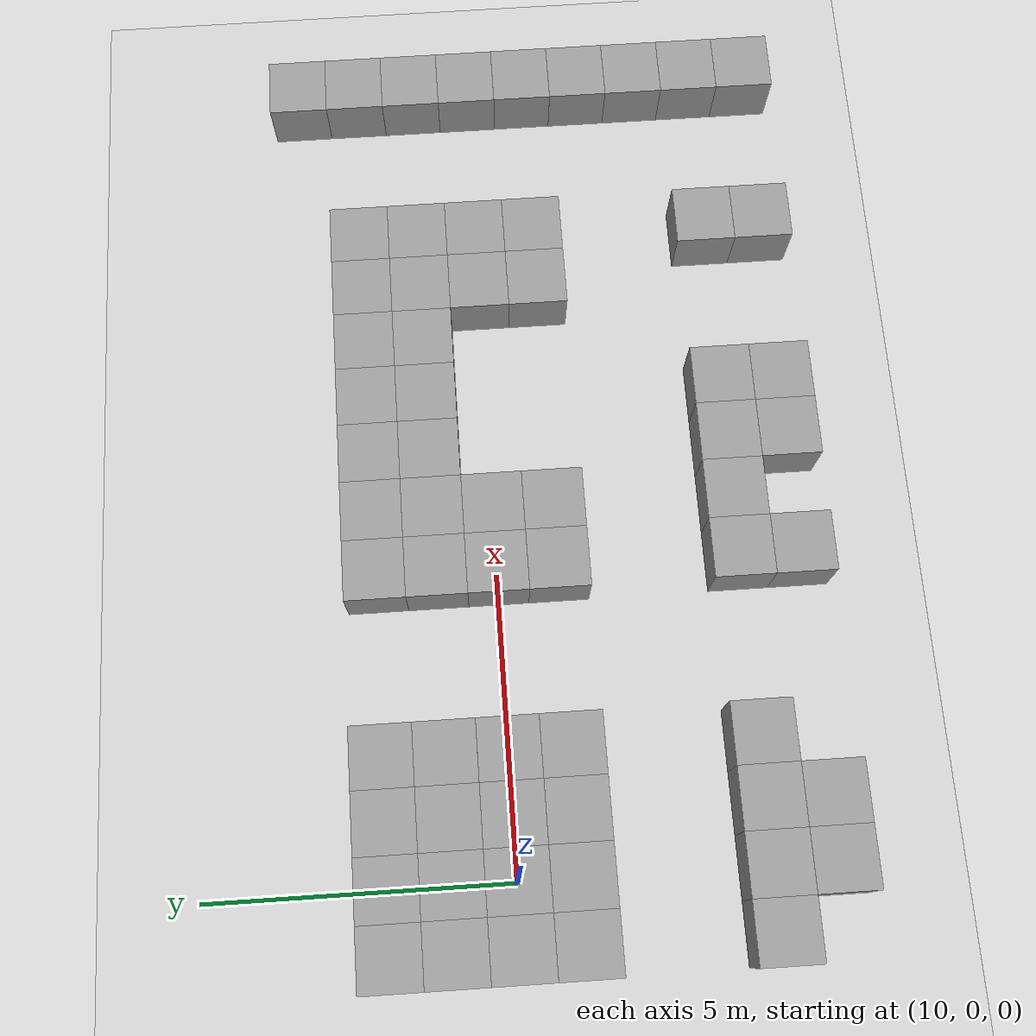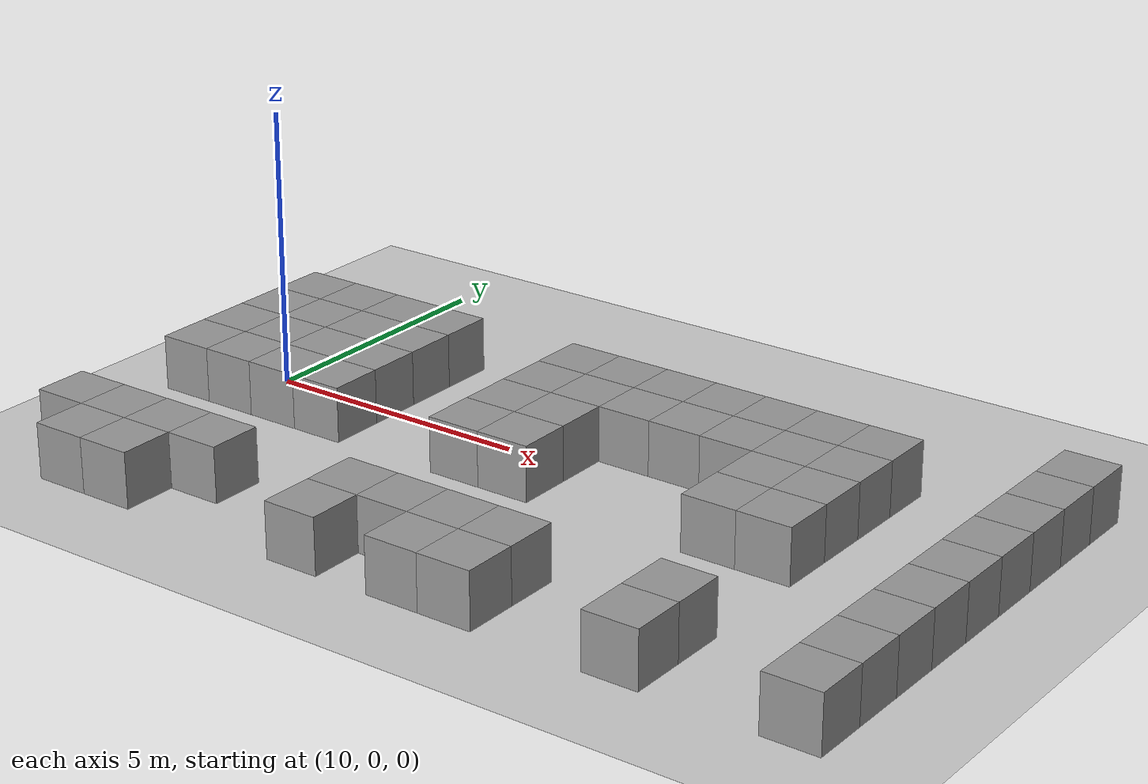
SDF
<sdf version="1.4">
 <world name="default">
  <model name="ground_plane">
   <static>true</static>
   <link name="link">
    <collision name="collision">
     <geometry><plane><normal>0 0 1</normal><size>100 100</size></plane></geometry>
     <surface><friction><ode><mu>100</mu><mu2>50</mu2></ode></friction></surface>
    </collision>
    <visual name="visual">
     <cast_shadows>0</cast_shadows>
     <geometry><plane><normal>0 0 1</normal><size>100 100</size></plane></geometry>
     <material>
      <script><uri>file://media/materials/scripts/gazebo.material</uri><name>Gazebo/Grey</name></script>
     </material>
    </visual>
    <velocity_decay><linear>0</linear><angular>0</angular></velocity_decay>
   </link>
  </model>
  <model name="unit_box_182">
   <pose>24.0018 -0.999661 0.5 0 -0 7.7e-05</pose>
   <static>true</static>
   <link name="link">
    <inertial>
     <mass>1</mass>
     <inertia><ixx>1</ixx><ixy>0</ixy><ixz>0</ixz><iyy>1</iyy><iyz>0</iyz><izz>1</izz></inertia>
    </inertial>
    <collision name="collision"><geometry><box><size>1 1 1</size></box></geometry></collision>
    <visual name="visual">
     <geometry><box><size>1 1 1</size></box></geometry>
     <material>
      <script><uri>file://media/materials/scripts/gazebo.material</uri><name>Gazebo/Grey</name></script>
     </material>
    </visual>
    <velocity_decay><linear>0</linear><angular>0</angular></velocity_decay>
   </link>
   <static>true</static>
  </model>
  <model name="unit_box_196">
   <pose>24 3.00041 0.5 0 -0 5.5e-05</pose>
   <static>true</static>
   <link name="link">
    <inertial>
     <mass>1</mass>
     <inertia><ixx>1</ixx><ixy>0</ixy><ixz>0</ixz><iyy>1</iyy><iyz>0</iyz><izz>1</izz></inertia>
    </inertial>
    <collision name="collision"><geometry><box><size>1 1 1</size></box></geometry></collision>
    <visual name="visual">
     <geometry><box><size>1 1 1</size></box></geometry>
     <material>
      <script><uri>file://media/materials/scripts/gazebo.material</uri><name>Gazebo/Grey</name></script>
     </material>
    </visual>
    <velocity_decay><linear>0</linear><angular>0</angular></velocity_decay>
   </link>
   <static>true</static>
  </model>
  <model name="unit_box_197">
   <pose>23.9999 2.00038 0.5 0 -0 6.3e-05</pose>
   <static>true</static>
   <link name="link">
    <inertial>
     <mass>1</mass>
     <inertia><ixx>1</ixx><ixy>0</ixy><ixz>0</ixz><iyy>1</iyy><iyz>0</iyz><izz>1</izz></inertia>
    </inertial>
    <collision name="collision"><geometry><box><size>1 1 1</size></box></geometry></collision>
    <visual name="visual">
     <geometry><box><size>1 1 1</size></box></geometry>
     <material>
      <script><uri>file://media/materials/scripts/gazebo.material</uri><name>Gazebo/Grey</name></script>
     </material>
    </visual>
    <velocity_decay><linear>0</linear><angular>0</angular></velocity_decay>
   </link>
   <static>true</static>
  </model>
  <model name="unit_box_198">
   <pose>23.9999 1.00035 0.5 0 -0 7.1e-05</pose>
   <static>true</static>
   <link name="link">
    <inertial>
     <mass>1</mass>
     <inertia><ixx>1</ixx><ixy>0</ixy><ixz>0</ixz><iyy>1</iyy><iyz>0</iyz><izz>1</izz></inertia>
    </inertial>
    <collision name="collision"><geometry><box><size>1 1 1</size></box></geometry></collision>
    <visual name="visual">
     <geometry><box><size>1 1 1</size></box></geometry>
     <material>
      <script><uri>file://media/materials/scripts/gazebo.material</uri><name>Gazebo/Grey</name></script>
     </material>
    </visual>
    <velocity_decay><linear>0</linear><angular>0</angular></velocity_decay>
   </link>
   <static>true</static>
  </model>
  <model name="unit_box_199">
   <pose>23.9997 0.000344 0.5 0 -0 7.4e-05</pose>
   <static>true</static>
   <link name="link">
    <inertial>
     <mass>1</mass>
     <inertia><ixx>1</ixx><ixy>0</ixy><ixz>0</ixz><iyy>1</iyy><iyz>0</iyz><izz>1</izz></inertia>
    </inertial>
    <collision name="collision"><geometry><box><size>1 1 1</size></box></geometry></collision>
    <visual name="visual">
     <geometry><box><size>1 1 1</size></box></geometry>
     <material>
      <script><uri>file://media/materials/scripts/gazebo.material</uri><name>Gazebo/Grey</name></script>
     </material>
    </visual>
    <velocity_decay><linear>0</linear><angular>0</angular></velocity_decay>
   </link>
   <static>true</static>
  </model>
  <model name="unit_box_204">
   <pose>24 -1.99999 0.5 0 -0 1e-06</pose>
   <static>true</static>
   <link name="link">
    <inertial>
     <mass>1</mass>
     <inertia><ixx>1</ixx><ixy>0</ixy><ixz>0</ixz><iyy>1</iyy><iyz>0</iyz><izz>1</izz></inertia>
    </inertial>
    <collision name="collision"><geometry><box><size>1 1 1</size></box></geometry></collision>
    <visual name="visual">
     <geometry><box><size>1 1 1</size></box></geometry>
     <material>
      <script><uri>file://media/materials/scripts/gazebo.material</uri><name>Gazebo/Grey</name></script>
     </material>
    </visual>
    <velocity_decay><linear>0</linear><angular>0</angular></velocity_decay>
   </link>
   <static>true</static>
  </model>
  <model name="unit_box_205">
   <pose>24 -2.99999 0.5 0 -0 1e-06</pose>
   <static>true</static>
   <link name="link">
    <inertial>
     <mass>1</mass>
     <inertia><ixx>1</ixx><ixy>0</ixy><ixz>0</ixz><iyy>1</iyy><iyz>0</iyz><izz>1</izz></inertia>
    </inertial>
    <collision name="collision"><geometry><box><size>1 1 1</size></box></geometry></collision>
    <visual name="visual">
     <geometry><box><size>1 1 1</size></box></geometry>
     <material>
      <script><uri>file://media/materials/scripts/gazebo.material</uri><name>Gazebo/Grey</name></script>
     </material>
    </visual>
    <velocity_decay><linear>0</linear><angular>0</angular></velocity_decay>
   </link>
   <static>true</static>
  </model>
  <model name="unit_box_206">
   <pose>24 -3.99999 0.5 0 0 -1e-06</pose>
   <static>true</static>
   <link name="link">
    <inertial>
     <mass>1</mass>
     <inertia><ixx>1</ixx><ixy>0</ixy><ixz>0</ixz><iyy>1</iyy><iyz>0</iyz><izz>1</izz></inertia>
    </inertial>
    <collision name="collision"><geometry><box><size>1 1 1</size></box></geometry></collision>
    <visual name="visual">
     <geometry><box><size>1 1 1</size></box></geometry>
     <material>
      <script><uri>file://media/materials/scripts/gazebo.material</uri><name>Gazebo/Grey</name></script>
     </material>
    </visual>
    <velocity_decay><linear>0</linear><angular>0</angular></velocity_decay>
   </link>
   <static>true</static>
  </model>
  <model name="unit_box_207">
   <pose>24 -4.99999 0.5 0 0 -1e-06</pose>
   <static>true</static>
   <link name="link">
    <inertial>
     <mass>1</mass>
     <inertia><ixx>1</ixx><ixy>0</ixy><ixz>0</ixz><iyy>1</iyy><iyz>0</iyz><izz>1</izz></inertia>
    </inertial>
    <collision name="collision"><geometry><box><size>1 1 1</size></box></geometry></collision>
    <visual name="visual">
     <geometry><box><size>1 1 1</size></box></geometry>
     <material>
      <script><uri>file://media/materials/scripts/gazebo.material</uri><name>Gazebo/Grey</name></script>
     </material>
    </visual>
    <velocity_decay><linear>0</linear><angular>0</angular></velocity_decay>
   </link>
   <static>true</static>
  </model>
  <model name="unit_box_167_0">
   <pose>11 -4.99999 0.5 -0 -0 -1e-06</pose>
   <link name="link">
    <inertial>
     <mass>1</mass>
     <inertia><ixx>1</ixx><ixy>0</ixy><ixz>0</ixz><iyy>1</iyy><iyz>0</iyz><izz>1</izz></inertia>
    </inertial>
    <collision name="collision"><geometry><box><size>1 1 1</size></box></geometry></collision>
    <visual name="visual">
     <geometry><box><size>1 1 1</size></box></geometry>
     <material>
      <script><uri>file://media/materials/scripts/gazebo.material</uri><name>Gazebo/Grey</name></script>
     </material>
    </visual>
    <velocity_decay><linear>0</linear><angular>0</angular></velocity_decay>
   </link>
   <static>true</static>
  </model>
  <model name="unit_box_168_0">
   <pose>10 -4.99999 0.5 0 -0 1e-06</pose>
   <link name="link">
    <inertial>
     <mass>1</mass>
     <inertia><ixx>1</ixx><ixy>0</ixy><ixz>0</ixz><iyy>1</iyy><iyz>0</iyz><izz>1</izz></inertia>
    </inertial>
    <collision name="collision"><geometry><box><size>1 1 1</size></box></geometry></collision>
    <visual name="visual">
     <geometry><box><size>1 1 1</size></box></geometry>
     <material>
      <script><uri>file://media/materials/scripts/gazebo.material</uri><name>Gazebo/Grey</name></script>
     </material>
    </visual>
    <velocity_decay><linear>0</linear><angular>0</angular></velocity_decay>
   </link>
   <static>true</static>
  </model>
  <model name="unit_box_172_0">
   <pose>9 -4 0.5 0 -0 0</pose>
   <link name="link">
    <inertial>
     <mass>1</mass>
     <inertia><ixx>1</ixx><ixy>0</ixy><ixz>0</ixz><iyy>1</iyy><iyz>0</iyz><izz>1</izz></inertia>
    </inertial>
    <collision name="collision"><geometry><box><size>1 1 1</size></box></geometry></collision>
    <visual name="visual">
     <geometry><box><size>1 1 1</size></box></geometry>
     <material>
      <script><uri>file://media/materials/scripts/gazebo.material</uri><name>Gazebo/Grey</name></script>
     </material>
    </visual>
    <velocity_decay><linear>0</linear><angular>0</angular></velocity_decay>
   </link>
   <static>true</static>
  </model>
  <model name="unit_box_173_0">
   <pose>10 -3.99999 0.5 0 -0 -1e-06</pose>
   <link name="link">
    <inertial>
     <mass>1</mass>
     <inertia><ixx>1</ixx><ixy>0</ixy><ixz>0</ixz><iyy>1</iyy><iyz>0</iyz><izz>1</izz></inertia>
    </inertial>
    <collision name="collision"><geometry><box><size>1 1 1</size></box></geometry></collision>
    <visual name="visual">
     <geometry><box><size>1 1 1</size></box></geometry>
     <material>
      <script><uri>file://media/materials/scripts/gazebo.material</uri><name>Gazebo/Grey</name></script>
     </material>
    </visual>
    <velocity_decay><linear>0</linear><angular>0</angular></velocity_decay>
   </link>
   <static>true</static>
  </model>
  <model name="unit_box_174_0">
   <pose>11 -3.99999 0.5 0 0 -1e-06</pose>
   <link name="link">
    <inertial>
     <mass>1</mass>
     <inertia><ixx>1</ixx><ixy>0</ixy><ixz>0</ixz><iyy>1</iyy><iyz>0</iyz><izz>1</izz></inertia>
    </inertial>
    <collision name="collision"><geometry><box><size>1 1 1</size></box></geometry></collision>
    <visual name="visual">
     <geometry><box><size>1 1 1</size></box></geometry>
     <material>
      <script><uri>file://media/materials/scripts/gazebo.material</uri><name>Gazebo/Grey</name></script>
     </material>
    </visual>
    <velocity_decay><linear>0</linear><angular>0</angular></velocity_decay>
   </link>
   <static>true</static>
  </model>
  <model name="unit_box_175_0">
   <pose>12 -4 0.5 0 -0 0</pose>
   <link name="link">
    <inertial>
     <mass>1</mass>
     <inertia><ixx>1</ixx><ixy>0</ixy><ixz>0</ixz><iyy>1</iyy><iyz>0</iyz><izz>1</izz></inertia>
    </inertial>
    <collision name="collision"><geometry><box><size>1 1 1</size></box></geometry></collision>
    <visual name="visual">
     <geometry><box><size>1 1 1</size></box></geometry>
     <material>
      <script><uri>file://media/materials/scripts/gazebo.material</uri><name>Gazebo/Grey</name></script>
     </material>
    </visual>
    <velocity_decay><linear>0</linear><angular>0</angular></velocity_decay>
   </link>
   <static>true</static>
  </model>
  <model name="unit_box_178_0">
   <pose>15 -3.99999 0.5 -0 -0 -5e-06</pose>
   <link name="link">
    <inertial>
     <mass>1</mass>
     <inertia><ixx>1</ixx><ixy>0</ixy><ixz>0</ixz><iyy>1</iyy><iyz>0</iyz><izz>1</izz></inertia>
    </inertial>
    <collision name="collision"><geometry><box><size>1 1 1</size></box></geometry></collision>
    <visual name="visual">
     <geometry><box><size>1 1 1</size></box></geometry>
     <material>
      <script><uri>file://media/materials/scripts/gazebo.material</uri><name>Gazebo/Grey</name></script>
     </material>
    </visual>
    <velocity_decay><linear>0</linear><angular>0</angular></velocity_decay>
   </link>
   <static>true</static>
  </model>
  <model name="unit_box_179_0">
   <pose>15 -4.99999 0.5 0 0 -5e-06</pose>
   <link name="link">
    <inertial>
     <mass>1</mass>
     <inertia><ixx>1</ixx><ixy>0</ixy><ixz>0</ixz><iyy>1</iyy><iyz>0</iyz><izz>1</izz></inertia>
    </inertial>
    <collision name="collision"><geometry><box><size>1 1 1</size></box></geometry></collision>
    <visual name="visual">
     <geometry><box><size>1 1 1</size></box></geometry>
     <material>
      <script><uri>file://media/materials/scripts/gazebo.material</uri><name>Gazebo/Grey</name></script>
     </material>
    </visual>
    <velocity_decay><linear>0</linear><angular>0</angular></velocity_decay>
   </link>
   <static>true</static>
  </model>
  <model name="unit_box_193_0">
   <pose>21 -5 0.5 0 0 -4e-06</pose>
   <link name="link">
    <inertial>
     <mass>1</mass>
     <inertia><ixx>1</ixx><ixy>0</ixy><ixz>0</ixz><iyy>1</iyy><iyz>0</iyz><izz>1</izz></inertia>
    </inertial>
    <collision name="collision"><geometry><box><size>1 1 1</size></box></geometry></collision>
    <visual name="visual">
     <geometry><box><size>1 1 1</size></box></geometry>
     <material>
      <script><uri>file://media/materials/scripts/gazebo.material</uri><name>Gazebo/Grey</name></script>
     </material>
    </visual>
    <velocity_decay><linear>0</linear><angular>0</angular></velocity_decay>
   </link>
   <static>true</static>
  </model>
  <model name="unit_box_194_0">
   <pose>21 -4 0.5 0 0 -4e-06</pose>
   <link name="link">
    <inertial>
     <mass>1</mass>
     <inertia><ixx>1</ixx><ixy>0</ixy><ixz>0</ixz><iyy>1</iyy><iyz>0</iyz><izz>1</izz></inertia>
    </inertial>
    <collision name="collision"><geometry><box><size>1 1 1</size></box></geometry></collision>
    <visual name="visual">
     <geometry><box><size>1 1 1</size></box></geometry>
     <material>
      <script><uri>file://media/materials/scripts/gazebo.material</uri><name>Gazebo/Grey</name></script>
     </material>
    </visual>
    <velocity_decay><linear>0</linear><angular>0</angular></velocity_decay>
   </link>
   <static>true</static>
  </model>
  <model name="unit_box_195_0">
   <pose>16 -3.99999 0.5 0 -0 -6e-06</pose>
   <link name="link">
    <inertial>
     <mass>1</mass>
     <inertia><ixx>1</ixx><ixy>0</ixy><ixz>0</ixz><iyy>1</iyy><iyz>0</iyz><izz>1</izz></inertia>
    </inertial>
    <collision name="collision"><geometry><box><size>1 1 1</size></box></geometry></collision>
    <visual name="visual">
     <geometry><box><size>1 1 1</size></box></geometry>
     <material>
      <script><uri>file://media/materials/scripts/gazebo.material</uri><name>Gazebo/Grey</name></script>
     </material>
    </visual>
    <velocity_decay><linear>0</linear><angular>0</angular></velocity_decay>
   </link>
   <static>true</static>
  </model>
  <model name="unit_box_197_0">
   <pose>17 -5 0.5 -0 -0 -4e-06</pose>
   <link name="link">
    <inertial>
     <mass>1</mass>
     <inertia><ixx>1</ixx><ixy>0</ixy><ixz>0</ixz><iyy>1</iyy><iyz>0</iyz><izz>1</izz></inertia>
    </inertial>
    <collision name="collision"><geometry><box><size>1 1 1</size></box></geometry></collision>
    <visual name="visual">
     <geometry><box><size>1 1 1</size></box></geometry>
     <material>
      <script><uri>file://media/materials/scripts/gazebo.material</uri><name>Gazebo/Grey</name></script>
     </material>
    </visual>
    <velocity_decay><linear>0</linear><angular>0</angular></velocity_decay>
   </link>
   <static>true</static>
  </model>
  <model name="unit_box_198_0">
   <pose>18 -5 0.5 -0 -0 -6e-06</pose>
   <link name="link">
    <inertial>
     <mass>1</mass>
     <inertia><ixx>1</ixx><ixy>0</ixy><ixz>0</ixz><iyy>1</iyy><iyz>0</iyz><izz>1</izz></inertia>
    </inertial>
    <collision name="collision"><geometry><box><size>1 1 1</size></box></geometry></collision>
    <visual name="visual">
     <geometry><box><size>1 1 1</size></box></geometry>
     <material>
      <script><uri>file://media/materials/scripts/gazebo.material</uri><name>Gazebo/Grey</name></script>
     </material>
    </visual>
    <velocity_decay><linear>0</linear><angular>0</angular></velocity_decay>
   </link>
   <static>true</static>
  </model>
  <model name="unit_box_199_0">
   <pose>17 -4 0.5 0 0 -6e-06</pose>
   <link name="link">
    <inertial>
     <mass>1</mass>
     <inertia><ixx>1</ixx><ixy>0</ixy><ixz>0</ixz><iyy>1</iyy><iyz>0</iyz><izz>1</izz></inertia>
    </inertial>
    <collision name="collision"><geometry><box><size>1 1 1</size></box></geometry></collision>
    <visual name="visual">
     <geometry><box><size>1 1 1</size></box></geometry>
     <material>
      <script><uri>file://media/materials/scripts/gazebo.material</uri><name>Gazebo/Grey</name></script>
     </material>
    </visual>
    <velocity_decay><linear>0</linear><angular>0</angular></velocity_decay>
   </link>
   <static>true</static>
  </model>
  <model name="unit_box_200_0">
   <pose>18 -4 0.5 0 0 -6e-06</pose>
   <link name="link">
    <inertial>
     <mass>1</mass>
     <inertia><ixx>1</ixx><ixy>0</ixy><ixz>0</ixz><iyy>1</iyy><iyz>0</iyz><izz>1</izz></inertia>
    </inertial>
    <collision name="collision"><geometry><box><size>1 1 1</size></box></geometry></collision>
    <visual name="visual">
     <geometry><box><size>1 1 1</size></box></geometry>
     <material>
      <script><uri>file://media/materials/scripts/gazebo.material</uri><name>Gazebo/Grey</name></script>
     </material>
    </visual>
    <velocity_decay><linear>0</linear><angular>0</angular></velocity_decay>
   </link>
   <static>true</static>
  </model>
  <model name="unit_box_241_0">
   <pose>9 2.00001 0.5 0 0 -2e-06</pose>
   <link name="link">
    <inertial>
     <mass>1</mass>
     <inertia><ixx>1</ixx><ixy>0</ixy><ixz>0</ixz><iyy>1</iyy><iyz>0</iyz><izz>1</izz></inertia>
    </inertial>
    <collision name="collision"><geometry><box><size>1 1 1</size></box></geometry></collision>
    <visual name="visual">
     <geometry><box><size>1 1 1</size></box></geometry>
     <material>
      <script><uri>file://media/materials/scripts/gazebo.material</uri><name>Gazebo/Grey</name></script>
     </material>
    </visual>
    <velocity_decay><linear>0</linear><angular>0</angular></velocity_decay>
   </link>
   <static>true</static>
  </model>
  <model name="unit_box_242">
   <pose>9 0.999997 0.5 0 0 -3e-06</pose>
   <link name="link">
    <inertial>
     <mass>1</mass>
     <inertia><ixx>1</ixx><ixy>0</ixy><ixz>0</ixz><iyy>1</iyy><iyz>0</iyz><izz>1</izz></inertia>
    </inertial>
    <collision name="collision"><geometry><box><size>1 1 1</size></box></geometry></collision>
    <visual name="visual">
     <geometry><box><size>1 1 1</size></box></geometry>
     <material>
      <script><uri>file://media/materials/scripts/gazebo.material</uri><name>Gazebo/Grey</name></script>
     </material>
    </visual>
    <velocity_decay><linear>0</linear><angular>0</angular></velocity_decay>
   </link>
   <static>true</static>
  </model>
  <model name="unit_box_243_0">
   <pose>9 -4e-06 0.5 0 -0 -2e-06</pose>
   <link name="link">
    <inertial>
     <mass>1</mass>
     <inertia><ixx>1</ixx><ixy>0</ixy><ixz>0</ixz><iyy>1</iyy><iyz>0</iyz><izz>1</izz></inertia>
    </inertial>
    <collision name="collision"><geometry><box><size>1 1 1</size></box></geometry></collision>
    <visual name="visual">
     <geometry><box><size>1 1 1</size></box></geometry>
     <material>
      <script><uri>file://media/materials/scripts/gazebo.material</uri><name>Gazebo/Grey</name></script>
     </material>
    </visual>
    <velocity_decay><linear>0</linear><angular>0</angular></velocity_decay>
   </link>
   <static>true</static>
  </model>
  <model name="unit_box_244_0">
   <pose>10 1.7e-05 0.5 0 0 -2e-06</pose>
   <link name="link">
    <inertial>
     <mass>1</mass>
     <inertia><ixx>1</ixx><ixy>0</ixy><ixz>0</ixz><iyy>1</iyy><iyz>0</iyz><izz>1</izz></inertia>
    </inertial>
    <collision name="collision"><geometry><box><size>1 1 1</size></box></geometry></collision>
    <visual name="visual">
     <geometry><box><size>1 1 1</size></box></geometry>
     <material>
      <script><uri>file://media/materials/scripts/gazebo.material</uri><name>Gazebo/Grey</name></script>
     </material>
    </visual>
    <velocity_decay><linear>0</linear><angular>0</angular></velocity_decay>
   </link>
   <static>true</static>
  </model>
  <model name="unit_box_245">
   <pose>10 1.00002 0.5 -0 -0 -2e-06</pose>
   <link name="link">
    <inertial>
     <mass>1</mass>
     <inertia><ixx>1</ixx><ixy>0</ixy><ixz>0</ixz><iyy>1</iyy><iyz>0</iyz><izz>1</izz></inertia>
    </inertial>
    <collision name="collision"><geometry><box><size>1 1 1</size></box></geometry></collision>
    <visual name="visual">
     <geometry><box><size>1 1 1</size></box></geometry>
     <material>
      <script><uri>file://media/materials/scripts/gazebo.material</uri><name>Gazebo/Grey</name></script>
     </material>
    </visual>
    <velocity_decay><linear>0</linear><angular>0</angular></velocity_decay>
   </link>
   <static>true</static>
  </model>
  <model name="unit_box_246">
   <pose>10 2.00002 0.5 0 -0 0</pose>
   <link name="link">
    <inertial>
     <mass>1</mass>
     <inertia><ixx>1</ixx><ixy>0</ixy><ixz>0</ixz><iyy>1</iyy><iyz>0</iyz><izz>1</izz></inertia>
    </inertial>
    <collision name="collision"><geometry><box><size>1 1 1</size></box></geometry></collision>
    <visual name="visual">
     <geometry><box><size>1 1 1</size></box></geometry>
     <material>
      <script><uri>file://media/materials/scripts/gazebo.material</uri><name>Gazebo/Grey</name></script>
     </material>
    </visual>
    <velocity_decay><linear>0</linear><angular>0</angular></velocity_decay>
   </link>
   <static>true</static>
  </model>
  <model name="unit_box_247">
   <pose>11 1e-06 0.5 0 0 -2e-06</pose>
   <link name="link">
    <inertial>
     <mass>1</mass>
     <inertia><ixx>1</ixx><ixy>0</ixy><ixz>0</ixz><iyy>1</iyy><iyz>0</iyz><izz>1</izz></inertia>
    </inertial>
    <collision name="collision"><geometry><box><size>1 1 1</size></box></geometry></collision>
    <visual name="visual">
     <geometry><box><size>1 1 1</size></box></geometry>
     <material>
      <script><uri>file://media/materials/scripts/gazebo.material</uri><name>Gazebo/Grey</name></script>
     </material>
    </visual>
    <velocity_decay><linear>0</linear><angular>0</angular></velocity_decay>
   </link>
   <static>true</static>
  </model>
  <model name="unit_box_250">
   <pose>9 -1.00001 0.5 0 0 -2e-06</pose>
   <link name="link">
    <inertial>
     <mass>1</mass>
     <inertia><ixx>1</ixx><ixy>0</ixy><ixz>0</ixz><iyy>1</iyy><iyz>0</iyz><izz>1</izz></inertia>
    </inertial>
    <collision name="collision"><geometry><box><size>1 1 1</size></box></geometry></collision>
    <visual name="visual">
     <geometry><box><size>1 1 1</size></box></geometry>
     <material>
      <script><uri>file://media/materials/scripts/gazebo.material</uri><name>Gazebo/Grey</name></script>
     </material>
    </visual>
    <velocity_decay><linear>0</linear><angular>0</angular></velocity_decay>
   </link>
   <static>true</static>
  </model>
  <model name="unit_box_251_0">
   <pose>10 -0.999988 0.5 0 -0 -2e-06</pose>
   <link name="link">
    <inertial>
     <mass>1</mass>
     <inertia><ixx>1</ixx><ixy>0</ixy><ixz>0</ixz><iyy>1</iyy><iyz>0</iyz><izz>1</izz></inertia>
    </inertial>
    <collision name="collision"><geometry><box><size>1 1 1</size></box></geometry></collision>
    <visual name="visual">
     <geometry><box><size>1 1 1</size></box></geometry>
     <material>
      <script><uri>file://media/materials/scripts/gazebo.material</uri><name>Gazebo/Grey</name></script>
     </material>
    </visual>
    <velocity_decay><linear>0</linear><angular>0</angular></velocity_decay>
   </link>
   <static>true</static>
  </model>
  <model name="unit_box_252_0">
   <pose>11 -1 0.5 0 0 -2e-06</pose>
   <link name="link">
    <inertial>
     <mass>1</mass>
     <inertia><ixx>1</ixx><ixy>0</ixy><ixz>0</ixz><iyy>1</iyy><iyz>0</iyz><izz>1</izz></inertia>
    </inertial>
    <collision name="collision"><geometry><box><size>1 1 1</size></box></geometry></collision>
    <visual name="visual">
     <geometry><box><size>1 1 1</size></box></geometry>
     <material>
      <script><uri>file://media/materials/scripts/gazebo.material</uri><name>Gazebo/Grey</name></script>
     </material>
    </visual>
    <velocity_decay><linear>0</linear><angular>0</angular></velocity_decay>
   </link>
   <static>true</static>
  </model>
  <model name="unit_box_253_0">
   <pose>11 1 0.5 0 0 -2e-06</pose>
   <link name="link">
    <inertial>
     <mass>1</mass>
     <inertia><ixx>1</ixx><ixy>0</ixy><ixz>0</ixz><iyy>1</iyy><iyz>0</iyz><izz>1</izz></inertia>
    </inertial>
    <collision name="collision"><geometry><box><size>1 1 1</size></box></geometry></collision>
    <visual name="visual">
     <geometry><box><size>1 1 1</size></box></geometry>
     <material>
      <script><uri>file://media/materials/scripts/gazebo.material</uri><name>Gazebo/Grey</name></script>
     </material>
    </visual>
    <velocity_decay><linear>0</linear><angular>0</angular></velocity_decay>
   </link>
   <static>true</static>
  </model>
  <model name="unit_box_254_0">
   <pose>11 2.00001 0.5 0 -0 1e-06</pose>
   <link name="link">
    <inertial>
     <mass>1</mass>
     <inertia><ixx>1</ixx><ixy>0</ixy><ixz>0</ixz><iyy>1</iyy><iyz>0</iyz><izz>1</izz></inertia>
    </inertial>
    <collision name="collision"><geometry><box><size>1 1 1</size></box></geometry></collision>
    <visual name="visual">
     <geometry><box><size>1 1 1</size></box></geometry>
     <material>
      <script><uri>file://media/materials/scripts/gazebo.material</uri><name>Gazebo/Grey</name></script>
     </material>
    </visual>
    <velocity_decay><linear>0</linear><angular>0</angular></velocity_decay>
   </link>
   <static>true</static>
  </model>
  <model name="unit_box_255_0">
   <pose>12 -1 0.5 0 -0 4e-06</pose>
   <link name="link">
    <inertial>
     <mass>1</mass>
     <inertia><ixx>1</ixx><ixy>0</ixy><ixz>0</ixz><iyy>1</iyy><iyz>0</iyz><izz>1</izz></inertia>
    </inertial>
    <collision name="collision"><geometry><box><size>1 1 1</size></box></geometry></collision>
    <visual name="visual">
     <geometry><box><size>1 1 1</size></box></geometry>
     <material>
      <script><uri>file://media/materials/scripts/gazebo.material</uri><name>Gazebo/Grey</name></script>
     </material>
    </visual>
    <velocity_decay><linear>0</linear><angular>0</angular></velocity_decay>
   </link>
   <static>true</static>
  </model>
  <model name="unit_box_256_0">
   <pose>12 -3e-06 0.5 0 -0 4e-06</pose>
   <link name="link">
    <inertial>
     <mass>1</mass>
     <inertia><ixx>1</ixx><ixy>0</ixy><ixz>0</ixz><iyy>1</iyy><iyz>0</iyz><izz>1</izz></inertia>
    </inertial>
    <collision name="collision"><geometry><box><size>1 1 1</size></box></geometry></collision>
    <visual name="visual">
     <geometry><box><size>1 1 1</size></box></geometry>
     <material>
      <script><uri>file://media/materials/scripts/gazebo.material</uri><name>Gazebo/Grey</name></script>
     </material>
    </visual>
    <velocity_decay><linear>0</linear><angular>0</angular></velocity_decay>
   </link>
   <static>true</static>
  </model>
  <model name="unit_box_257_0">
   <pose>12 1 0.5 0 -0 2e-06</pose>
   <link name="link">
    <inertial>
     <mass>1</mass>
     <inertia><ixx>1</ixx><ixy>0</ixy><ixz>0</ixz><iyy>1</iyy><iyz>0</iyz><izz>1</izz></inertia>
    </inertial>
    <collision name="collision"><geometry><box><size>1 1 1</size></box></geometry></collision>
    <visual name="visual">
     <geometry><box><size>1 1 1</size></box></geometry>
     <material>
      <script><uri>file://media/materials/scripts/gazebo.material</uri><name>Gazebo/Grey</name></script>
     </material>
    </visual>
    <velocity_decay><linear>0</linear><angular>0</angular></velocity_decay>
   </link>
   <static>true</static>
  </model>
  <model name="unit_box_258_0">
   <pose>12 2.00001 0.5 0 -0 2e-06</pose>
   <link name="link">
    <inertial>
     <mass>1</mass>
     <inertia><ixx>1</ixx><ixy>0</ixy><ixz>0</ixz><iyy>1</iyy><iyz>0</iyz><izz>1</izz></inertia>
    </inertial>
    <collision name="collision"><geometry><box><size>1 1 1</size></box></geometry></collision>
    <visual name="visual">
     <geometry><box><size>1 1 1</size></box></geometry>
     <material>
      <script><uri>file://media/materials/scripts/gazebo.material</uri><name>Gazebo/Grey</name></script>
     </material>
    </visual>
    <velocity_decay><linear>0</linear><angular>0</angular></velocity_decay>
   </link>
   <static>true</static>
  </model>
  <model name="unit_box_259_0">
   <pose>15 -1 0.5 0 -0 -3e-06</pose>
   <link name="link">
    <inertial>
     <mass>1</mass>
     <inertia><ixx>1</ixx><ixy>0</ixy><ixz>0</ixz><iyy>1</iyy><iyz>0</iyz><izz>1</izz></inertia>
    </inertial>
    <collision name="collision"><geometry><box><size>1 1 1</size></box></geometry></collision>
    <visual name="visual">
     <geometry><box><size>1 1 1</size></box></geometry>
     <material>
      <script><uri>file://media/materials/scripts/gazebo.material</uri><name>Gazebo/Grey</name></script>
     </material>
    </visual>
    <velocity_decay><linear>0</linear><angular>0</angular></velocity_decay>
   </link>
   <static>true</static>
  </model>
  <model name="unit_box_260_0">
   <pose>15 -1e-06 0.5 0 -0 -3e-06</pose>
   <link name="link">
    <inertial>
     <mass>1</mass>
     <inertia><ixx>1</ixx><ixy>0</ixy><ixz>0</ixz><iyy>1</iyy><iyz>0</iyz><izz>1</izz></inertia>
    </inertial>
    <collision name="collision"><geometry><box><size>1 1 1</size></box></geometry></collision>
    <visual name="visual">
     <geometry><box><size>1 1 1</size></box></geometry>
     <material>
      <script><uri>file://media/materials/scripts/gazebo.material</uri><name>Gazebo/Grey</name></script>
     </material>
    </visual>
    <velocity_decay><linear>0</linear><angular>0</angular></velocity_decay>
   </link>
   <static>true</static>
  </model>
  <model name="unit_box_261_0">
   <pose>15 1 0.5 0 0 -3e-06</pose>
   <link name="link">
    <inertial>
     <mass>1</mass>
     <inertia><ixx>1</ixx><ixy>0</ixy><ixz>0</ixz><iyy>1</iyy><iyz>0</iyz><izz>1</izz></inertia>
    </inertial>
    <collision name="collision"><geometry><box><size>1 1 1</size></box></geometry></collision>
    <visual name="visual">
     <geometry><box><size>1 1 1</size></box></geometry>
     <material>
      <script><uri>file://media/materials/scripts/gazebo.material</uri><name>Gazebo/Grey</name></script>
     </material>
    </visual>
    <velocity_decay><linear>0</linear><angular>0</angular></velocity_decay>
   </link>
   <static>true</static>
  </model>
  <model name="unit_box_262_0">
   <pose>15 2 0.5 0 0 -2e-06</pose>
   <link name="link">
    <inertial>
     <mass>1</mass>
     <inertia><ixx>1</ixx><ixy>0</ixy><ixz>0</ixz><iyy>1</iyy><iyz>0</iyz><izz>1</izz></inertia>
    </inertial>
    <collision name="collision"><geometry><box><size>1 1 1</size></box></geometry></collision>
    <visual name="visual">
     <geometry><box><size>1 1 1</size></box></geometry>
     <material>
      <script><uri>file://media/materials/scripts/gazebo.material</uri><name>Gazebo/Grey</name></script>
     </material>
    </visual>
    <velocity_decay><linear>0</linear><angular>0</angular></velocity_decay>
   </link>
   <static>true</static>
  </model>
  <model name="unit_box_263_0">
   <pose>16 2.00001 0.5 0 -0 0</pose>
   <link name="link">
    <inertial>
     <mass>1</mass>
     <inertia><ixx>1</ixx><ixy>0</ixy><ixz>0</ixz><iyy>1</iyy><iyz>0</iyz><izz>1</izz></inertia>
    </inertial>
    <collision name="collision"><geometry><box><size>1 1 1</size></box></geometry></collision>
    <visual name="visual">
     <geometry><box><size>1 1 1</size></box></geometry>
     <material>
      <script><uri>file://media/materials/scripts/gazebo.material</uri><name>Gazebo/Grey</name></script>
     </material>
    </visual>
    <velocity_decay><linear>0</linear><angular>0</angular></velocity_decay>
   </link>
   <static>true</static>
  </model>
  <model name="unit_box_264_0">
   <pose>17 2.00001 0.5 0 0 -1e-06</pose>
   <link name="link">
    <inertial>
     <mass>1</mass>
     <inertia><ixx>1</ixx><ixy>0</ixy><ixz>0</ixz><iyy>1</iyy><iyz>0</iyz><izz>1</izz></inertia>
    </inertial>
    <collision name="collision"><geometry><box><size>1 1 1</size></box></geometry></collision>
    <visual name="visual">
     <geometry><box><size>1 1 1</size></box></geometry>
     <material>
      <script><uri>file://media/materials/scripts/gazebo.material</uri><name>Gazebo/Grey</name></script>
     </material>
    </visual>
    <velocity_decay><linear>0</linear><angular>0</angular></velocity_decay>
   </link>
   <static>true</static>
  </model>
  <model name="unit_box_265_0">
   <pose>18 2 0.5 0 0 -2e-06</pose>
   <link name="link">
    <inertial>
     <mass>1</mass>
     <inertia><ixx>1</ixx><ixy>0</ixy><ixz>0</ixz><iyy>1</iyy><iyz>0</iyz><izz>1</izz></inertia>
    </inertial>
    <collision name="collision"><geometry><box><size>1 1 1</size></box></geometry></collision>
    <visual name="visual">
     <geometry><box><size>1 1 1</size></box></geometry>
     <material>
      <script><uri>file://media/materials/scripts/gazebo.material</uri><name>Gazebo/Grey</name></script>
     </material>
    </visual>
    <velocity_decay><linear>0</linear><angular>0</angular></velocity_decay>
   </link>
   <static>true</static>
  </model>
  <model name="unit_box_266_0">
   <pose>19 2.00001 0.5 0 -0 -2e-06</pose>
   <link name="link">
    <inertial>
     <mass>1</mass>
     <inertia><ixx>1</ixx><ixy>0</ixy><ixz>0</ixz><iyy>1</iyy><iyz>0</iyz><izz>1</izz></inertia>
    </inertial>
    <collision name="collision"><geometry><box><size>1 1 1</size></box></geometry></collision>
    <visual name="visual">
     <geometry><box><size>1 1 1</size></box></geometry>
     <material>
      <script><uri>file://media/materials/scripts/gazebo.material</uri><name>Gazebo/Grey</name></script>
     </material>
    </visual>
    <velocity_decay><linear>0</linear><angular>0</angular></velocity_decay>
   </link>
   <static>true</static>
  </model>
  <model name="unit_box_267_0">
   <pose>20 2.00001 0.5 0 0 -2e-06</pose>
   <link name="link">
    <inertial>
     <mass>1</mass>
     <inertia><ixx>1</ixx><ixy>0</ixy><ixz>0</ixz><iyy>1</iyy><iyz>0</iyz><izz>1</izz></inertia>
    </inertial>
    <collision name="collision"><geometry><box><size>1 1 1</size></box></geometry></collision>
    <visual name="visual">
     <geometry><box><size>1 1 1</size></box></geometry>
     <material>
      <script><uri>file://media/materials/scripts/gazebo.material</uri><name>Gazebo/Grey</name></script>
     </material>
    </visual>
    <velocity_decay><linear>0</linear><angular>0</angular></velocity_decay>
   </link>
   <static>true</static>
  </model>
  <model name="unit_box_268_0">
   <pose>21 2.00001 0.5 0 -0 0</pose>
   <link name="link">
    <inertial>
     <mass>1</mass>
     <inertia><ixx>1</ixx><ixy>0</ixy><ixz>0</ixz><iyy>1</iyy><iyz>0</iyz><izz>1</izz></inertia>
    </inertial>
    <collision name="collision"><geometry><box><size>1 1 1</size></box></geometry></collision>
    <visual name="visual">
     <geometry><box><size>1 1 1</size></box></geometry>
     <material>
      <script><uri>file://media/materials/scripts/gazebo.material</uri><name>Gazebo/Grey</name></script>
     </material>
    </visual>
    <velocity_decay><linear>0</linear><angular>0</angular></velocity_decay>
   </link>
   <static>true</static>
  </model>
  <model name="unit_box_269_0">
   <pose>21 1 0.5 0 -0 3e-06</pose>
   <link name="link">
    <inertial>
     <mass>1</mass>
     <inertia><ixx>1</ixx><ixy>0</ixy><ixz>0</ixz><iyy>1</iyy><iyz>0</iyz><izz>1</izz></inertia>
    </inertial>
    <collision name="collision"><geometry><box><size>1 1 1</size></box></geometry></collision>
    <visual name="visual">
     <geometry><box><size>1 1 1</size></box></geometry>
     <material>
      <script><uri>file://media/materials/scripts/gazebo.material</uri><name>Gazebo/Grey</name></script>
     </material>
    </visual>
    <velocity_decay><linear>0</linear><angular>0</angular></velocity_decay>
   </link>
   <static>true</static>
  </model>
  <model name="unit_box_270_0">
   <pose>21 -0 0.5 -0 -0 -3e-06</pose>
   <link name="link">
    <inertial>
     <mass>1</mass>
     <inertia><ixx>1</ixx><ixy>0</ixy><ixz>0</ixz><iyy>1</iyy><iyz>0</iyz><izz>1</izz></inertia>
    </inertial>
    <collision name="collision"><geometry><box><size>1 1 1</size></box></geometry></collision>
    <visual name="visual">
     <geometry><box><size>1 1 1</size></box></geometry>
     <material>
      <script><uri>file://media/materials/scripts/gazebo.material</uri><name>Gazebo/Grey</name></script>
     </material>
    </visual>
    <velocity_decay><linear>0</linear><angular>0</angular></velocity_decay>
   </link>
   <static>true</static>
  </model>
  <model name="unit_box_271_0">
   <pose>21 -1 0.5 -0 -0 -4e-06</pose>
   <link name="link">
    <inertial>
     <mass>1</mass>
     <inertia><ixx>1</ixx><ixy>0</ixy><ixz>0</ixz><iyy>1</iyy><iyz>0</iyz><izz>1</izz></inertia>
    </inertial>
    <collision name="collision"><geometry><box><size>1 1 1</size></box></geometry></collision>
    <visual name="visual">
     <geometry><box><size>1 1 1</size></box></geometry>
     <material>
      <script><uri>file://media/materials/scripts/gazebo.material</uri><name>Gazebo/Grey</name></script>
     </material>
    </visual>
    <velocity_decay><linear>0</linear><angular>0</angular></velocity_decay>
   </link>
   <static>true</static>
  </model>
  <model name="unit_box_272_0">
   <pose>16 -1.00001 0.5 0 0 -2e-06</pose>
   <link name="link">
    <inertial>
     <mass>1</mass>
     <inertia><ixx>1</ixx><ixy>0</ixy><ixz>0</ixz><iyy>1</iyy><iyz>0</iyz><izz>1</izz></inertia>
    </inertial>
    <collision name="collision"><geometry><box><size>1 1 1</size></box></geometry></collision>
    <visual name="visual">
     <geometry><box><size>1 1 1</size></box></geometry>
     <material>
      <script><uri>file://media/materials/scripts/gazebo.material</uri><name>Gazebo/Grey</name></script>
     </material>
    </visual>
    <velocity_decay><linear>0</linear><angular>0</angular></velocity_decay>
   </link>
   <static>true</static>
  </model>
  <model name="unit_box_273_0">
   <pose>16 -3e-06 0.5 -0 -0 -3e-06</pose>
   <link name="link">
    <inertial>
     <mass>1</mass>
     <inertia><ixx>1</ixx><ixy>0</ixy><ixz>0</ixz><iyy>1</iyy><iyz>0</iyz><izz>1</izz></inertia>
    </inertial>
    <collision name="collision"><geometry><box><size>1 1 1</size></box></geometry></collision>
    <visual name="visual">
     <geometry><box><size>1 1 1</size></box></geometry>
     <material>
      <script><uri>file://media/materials/scripts/gazebo.material</uri><name>Gazebo/Grey</name></script>
     </material>
    </visual>
    <velocity_decay><linear>0</linear><angular>0</angular></velocity_decay>
   </link>
   <static>true</static>
  </model>
  <model name="unit_box_274_0">
   <pose>16 1 0.5 0 -0 0</pose>
   <link name="link">
    <inertial>
     <mass>1</mass>
     <inertia><ixx>1</ixx><ixy>0</ixy><ixz>0</ixz><iyy>1</iyy><iyz>0</iyz><izz>1</izz></inertia>
    </inertial>
    <collision name="collision"><geometry><box><size>1 1 1</size></box></geometry></collision>
    <visual name="visual">
     <geometry><box><size>1 1 1</size></box></geometry>
     <material>
      <script><uri>file://media/materials/scripts/gazebo.material</uri><name>Gazebo/Grey</name></script>
     </material>
    </visual>
    <velocity_decay><linear>0</linear><angular>0</angular></velocity_decay>
   </link>
   <static>true</static>
  </model>
  <model name="unit_box_275_0">
   <pose>17 1.00001 0.5 0 -0 0</pose>
   <link name="link">
    <inertial>
     <mass>1</mass>
     <inertia><ixx>1</ixx><ixy>0</ixy><ixz>0</ixz><iyy>1</iyy><iyz>0</iyz><izz>1</izz></inertia>
    </inertial>
    <collision name="collision"><geometry><box><size>1 1 1</size></box></geometry></collision>
    <visual name="visual">
     <geometry><box><size>1 1 1</size></box></geometry>
     <material>
      <script><uri>file://media/materials/scripts/gazebo.material</uri><name>Gazebo/Grey</name></script>
     </material>
    </visual>
    <velocity_decay><linear>0</linear><angular>0</angular></velocity_decay>
   </link>
   <static>true</static>
  </model>
  <model name="unit_box_276_0">
   <pose>18 0.999985 0.5 0 -0 -2e-06</pose>
   <link name="link">
    <inertial>
     <mass>1</mass>
     <inertia><ixx>1</ixx><ixy>0</ixy><ixz>0</ixz><iyy>1</iyy><iyz>0</iyz><izz>1</izz></inertia>
    </inertial>
    <collision name="collision"><geometry><box><size>1 1 1</size></box></geometry></collision>
    <visual name="visual">
     <geometry><box><size>1 1 1</size></box></geometry>
     <material>
      <script><uri>file://media/materials/scripts/gazebo.material</uri><name>Gazebo/Grey</name></script>
     </material>
    </visual>
    <velocity_decay><linear>0</linear><angular>0</angular></velocity_decay>
   </link>
   <static>true</static>
  </model>
  <model name="unit_box_277_0">
   <pose>19 0.999996 0.5 -0 -0 -2e-06</pose>
   <link name="link">
    <inertial>
     <mass>1</mass>
     <inertia><ixx>1</ixx><ixy>0</ixy><ixz>0</ixz><iyy>1</iyy><iyz>0</iyz><izz>1</izz></inertia>
    </inertial>
    <collision name="collision"><geometry><box><size>1 1 1</size></box></geometry></collision>
    <visual name="visual">
     <geometry><box><size>1 1 1</size></box></geometry>
     <material>
      <script><uri>file://media/materials/scripts/gazebo.material</uri><name>Gazebo/Grey</name></script>
     </material>
    </visual>
    <velocity_decay><linear>0</linear><angular>0</angular></velocity_decay>
   </link>
   <static>true</static>
  </model>
  <model name="unit_box_278_0">
   <pose>20 1 0.5 0 -0 -3e-06</pose>
   <link name="link">
    <inertial>
     <mass>1</mass>
     <inertia><ixx>1</ixx><ixy>0</ixy><ixz>0</ixz><iyy>1</iyy><iyz>0</iyz><izz>1</izz></inertia>
    </inertial>
    <collision name="collision"><geometry><box><size>1 1 1</size></box></geometry></collision>
    <visual name="visual">
     <geometry><box><size>1 1 1</size></box></geometry>
     <material>
      <script><uri>file://media/materials/scripts/gazebo.material</uri><name>Gazebo/Grey</name></script>
     </material>
    </visual>
    <velocity_decay><linear>0</linear><angular>0</angular></velocity_decay>
   </link>
   <static>true</static>
  </model>
  <model name="unit_box_279_0">
   <pose>20 -1e-06 0.5 -0 -0 -3e-06</pose>
   <link name="link">
    <inertial>
     <mass>1</mass>
     <inertia><ixx>1</ixx><ixy>0</ixy><ixz>0</ixz><iyy>1</iyy><iyz>0</iyz><izz>1</izz></inertia>
    </inertial>
    <collision name="collision"><geometry><box><size>1 1 1</size></box></geometry></collision>
    <visual name="visual">
     <geometry><box><size>1 1 1</size></box></geometry>
     <material>
      <script><uri>file://media/materials/scripts/gazebo.material</uri><name>Gazebo/Grey</name></script>
     </material>
    </visual>
    <velocity_decay><linear>0</linear><angular>0</angular></velocity_decay>
   </link>
   <static>true</static>
  </model>
  <model name="unit_box_280_0">
   <pose>20 -1 0.5 0 -0 -3e-06</pose>
   <link name="link">
    <inertial>
     <mass>1</mass>
     <inertia><ixx>1</ixx><ixy>0</ixy><ixz>0</ixz><iyy>1</iyy><iyz>0</iyz><izz>1</izz></inertia>
    </inertial>
    <collision name="collision"><geometry><box><size>1 1 1</size></box></geometry></collision>
    <visual name="visual">
     <geometry><box><size>1 1 1</size></box></geometry>
     <material>
      <script><uri>file://media/materials/scripts/gazebo.material</uri><name>Gazebo/Grey</name></script>
     </material>
    </visual>
    <velocity_decay><linear>0</linear><angular>0</angular></velocity_decay>
   </link>
   <static>true</static>
  </model>
 </world>
</sdf>
